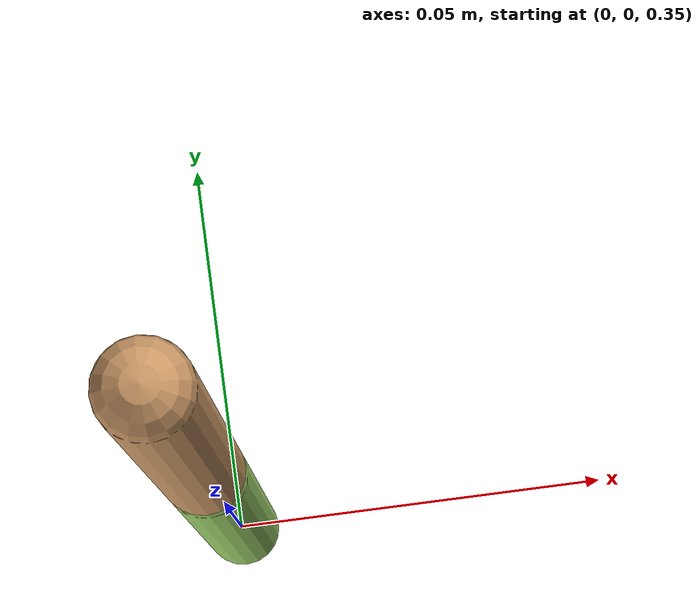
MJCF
<mujoco model="two_capsule_ball">
    <worldbody>
        <body name="B0" pos="0 0 0.5">
            <freejoint/>
            <geom type="capsule" size="0.005 0.05" mass="0.001" rgba="0.8 0.6 0.4 1"/>
            <body name="B1" pos="0 0 -0.105">
                <joint type="ball" damping="0.01" armature="0.001"/>
                <geom type="capsule" size="0.005 0.05" mass="0.001" rgba="0.6 0.8 0.4 1"/>
            </body>
        </body>
    </worldbody>
</mujoco>
